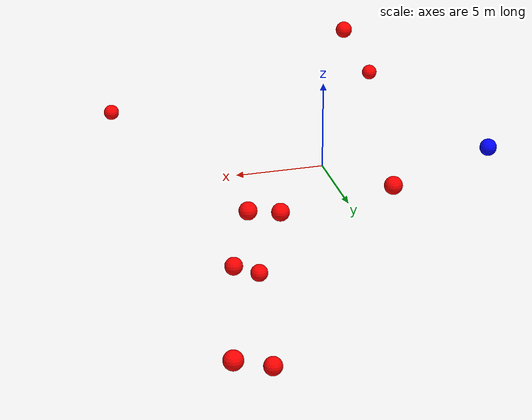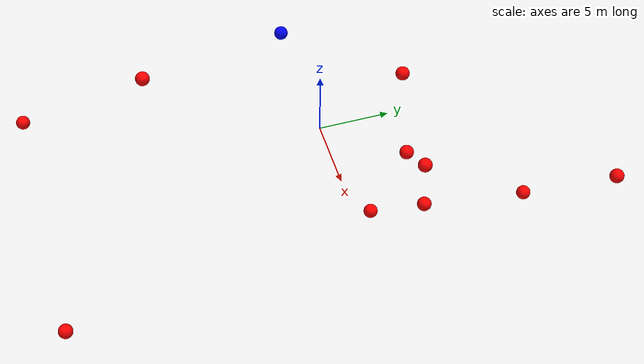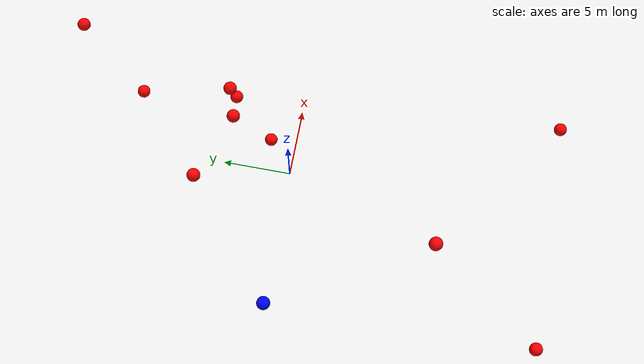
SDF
<?xml version="1.0" ?>
<sdf version="1.8">
    <world name="3d_world">
        <physics name="1ms" type="ode">
            <max_step_size>0.001</max_step_size>
            <real_time_factor>1.0</real_time_factor>
            <real_time_update_rate>1000.0</real_time_update_rate>
        </physics>
        <gravity>0 0 0</gravity>

        <plugin
            filename="gz-sim-physics-system"
            name="gz::sim::v8::systems::Physics">
        </plugin>
        <plugin
            filename="libignition-gazebo-user-commands-system.so"
            name="ignition::gazebo::systems::UserCommands">
        </plugin>
        <plugin
            filename="gz-sim-scene-broadcaster-system"
            name="gz::sim::systems::SceneBroadcaster">
        </plugin>
        <plugin
            filename="gz-sim-sensors-system"
            name="gz::sim::systems::Sensors">
            <render_engine>ogre2</render_engine>
        </plugin>

        <light type="directional" name="sun">
            <cast_shadows>true</cast_shadows>
            <pose>0 0 10 0 0 0</pose>
            <diffuse>0.8 0.8 0.8 1</diffuse>
            <specular>0.2 0.2 0.2 1</specular>
            <attenuation>
                <range>1000</range>
                <constant>0.9</constant>
                <linear>0.01</linear>
                <quadratic>0.001</quadratic>
            </attenuation>
            <direction>-0.5 0.1 -0.9</direction>
        </light>

        <!-- AGENTE -->
        <model name='agente' canonical_link='chassis'>
            <pose relative_to='world'>-10.0 0 0.0 0 0 0</pose>
            <link name='chassis'>
                <pose relative_to='__model__'>0.0 0 0.0 0 0 0</pose>
                <inertial>
                    <mass>1.14395</mass>
                    <inertia>
                        <ixx>0.095329</ixx>
                        <ixy>0</ixy>
                        <ixz>0</ixz>
                        <iyy>0.381317</iyy>
                        <iyz>0</iyz>
                        <izz>0.476646</izz>
                    </inertia>
                </inertial>
                <visual name='visual'>
                    <geometry>
                        <sphere>
                            <radius>0.5</radius>
                        </sphere>
                    </geometry>
                    <material>
                        <ambient>0.0 0.0 1.0 1</ambient>
                        <diffuse>0.0 0.0 1.0 1</diffuse>
                        <specular>0.0 0.0 1.0 1</specular>
                    </material>
                </visual>
                <collision name='collision'>
                    <geometry>
                        <sphere>
                            <radius>0.5</radius>
                        </sphere>
                    </geometry>
                </collision>
                <enable_gravity>false</enable_gravity>
            </link>

            <link name='lidar_link'>
                <pose relative_to='chassis'>0.0 0 0.1 0 0 0</pose>
                <inertial>
                    <mass>0.1</mass>
                    <inertia>
                        <ixx>0.000166667</ixx>
                        <iyy>0.000166667</iyy>
                        <izz>0.000166667</izz>
                    </inertia>
                </inertial>
                <collision name='collision'>
                    <geometry>
                        <cylinder>
                            <radius>0.05</radius>
                            <length>0.1</length>
                        </cylinder>
                    </geometry>
                </collision>
                <visual name='visual'>
                    <geometry>
                        <cylinder>
                            <radius>0.05</radius>
                            <length>0.1</length>
                        </cylinder>
                    </geometry>
                    <material>
                        <ambient>0.0 1.0 0.0 1</ambient>
                        <diffuse>0.0 1.0 0.0 1</diffuse>
                        <specular>0.0 1.0 0.0 1</specular>
                    </material>
                </visual>
                <sensor name="lidar" type="gpu_lidar">
                    <topic>scan</topic>
                    <update_rate>10</update_rate>
                    <lidar>
                        <scan>
                            <horizontal>
                                <samples>5000</samples>
                                <resolution>1</resolution>
                                <min_angle>-3.14159</min_angle>
                                <max_angle>3.14159</max_angle>
                            </horizontal>
                        </scan>
                        <range>
                            <min>0.1</min>
                            <max>10.0</max>
                            <resolution>0.01</resolution>
                        </range>
                    </lidar>
                    <visualize>true</visualize>
                    <always_on>true</always_on>
                    <update_rate>10</update_rate>
                    <pose_frame>lidar</pose_frame>
                </sensor>
                <enable_gravity>false</enable_gravity>
            </link>

            <joint name="lidar_joint" type="fixed">
                <parent>chassis</parent>
                <child>lidar_link</child>
            </joint>

            <plugin
                filename="ignition-gazebo-joint-state-publisher-system"
                name="ignition::gazebo::systems::JointStatePublisher">
            </plugin>
            <plugin
                filename="ignition-gazebo-odometry-publisher-system"
                name="ignition::gazebo::systems::OdometryPublisher">
                <dimensions>3</dimensions>
            </plugin>
            <plugin
                filename="ignition-gazebo-velocity-control-system"
                name="ignition::gazebo::systems::VelocityControl">
                <initial_linear>0.0 0 0</initial_linear>
                <initial_angular>0 0 0.0</initial_angular>
            </plugin>
            <plugin
                filename="libignition-gazebo-pose-publisher-system.so"
                name="ignition::gazebo::systems::PosePublisher">
                <topic>/agente/pose</topic>
                <frame_id>agente</frame_id>
                <update_rate>30</update_rate>
            </plugin>
        </model>

        <!-- OBSTACLE 1 -->
        <model name='obstacle_1' canonical_link='obstacle'>
            <static>false</static>
            <pose relative_to='world'>3.80 5.11 0.00 0 0 0</pose>
            <link name='obstacle'>
                <pose relative_to='__model__'>0.0 0 0.0 0 0 0</pose>
                <visual name='visual'>
                    <geometry>
                        <sphere>
                            <radius>0.50</radius>
                        </sphere>
                    </geometry>
                    <material>
                        <ambient>1.0 0.0 0.0 1</ambient>
                        <diffuse>1.0 0.0 0.0 1</diffuse>
                        <specular>1.0 0.0 0.0 1</specular>
                    </material>
                </visual>
                <collision name='collision'>
                    <geometry>
                        <sphere>
                            <radius>0.50</radius>
                        </sphere>
                    </geometry>
                </collision>
                <enable_gravity>false</enable_gravity>
            </link>

            <plugin
                filename="ignition-gazebo-velocity-control-system"
                name="ignition::gazebo::systems::VelocityControl">
                <initial_linear>-0.90 -1.26 -0.00</initial_linear>
                <initial_angular>0 0 0</initial_angular>
            </plugin>

            <plugin
                filename="ignition-gazebo-odometry-publisher-system"
                name="ignition::gazebo::systems::OdometryPublisher">
                <dimensions>3</dimensions>
            </plugin>
        </model>

        <!-- OBSTACLE 2 -->
        <model name='obstacle_2' canonical_link='obstacle'>
            <static>false</static>
            <pose relative_to='world'>9.52 18.34 -0.50 0 0 0</pose>
            <link name='obstacle'>
                <pose relative_to='__model__'>0.0 0 0.0 0 0 0</pose>
                <visual name='visual'>
                    <geometry>
                        <sphere>
                            <radius>0.50</radius>
                        </sphere>
                    </geometry>
                    <material>
                        <ambient>1.0 0.0 0.0 1</ambient>
                        <diffuse>1.0 0.0 0.0 1</diffuse>
                        <specular>1.0 0.0 0.0 1</specular>
                    </material>
                </visual>
                <collision name='collision'>
                    <geometry>
                        <sphere>
                            <radius>0.50</radius>
                        </sphere>
                    </geometry>
                </collision>
                <enable_gravity>false</enable_gravity>
            </link>

            <plugin
                filename="ignition-gazebo-velocity-control-system"
                name="ignition::gazebo::systems::VelocityControl">
                <initial_linear>-1.22 -1.58 0.04</initial_linear>
                <initial_angular>0 0 0</initial_angular>
            </plugin>

            <plugin
                filename="ignition-gazebo-odometry-publisher-system"
                name="ignition::gazebo::systems::OdometryPublisher">
                <dimensions>3</dimensions>
            </plugin>
        </model>

        <!-- OBSTACLE 3 -->
        <model name='obstacle_3' canonical_link='obstacle'>
            <static>false</static>
            <pose relative_to='world'>5.73 5.72 0.61 0 0 0</pose>
            <link name='obstacle'>
                <pose relative_to='__model__'>0.0 0 0.0 0 0 0</pose>
                <visual name='visual'>
                    <geometry>
                        <sphere>
                            <radius>0.50</radius>
                        </sphere>
                    </geometry>
                    <material>
                        <ambient>1.0 0.0 0.0 1</ambient>
                        <diffuse>1.0 0.0 0.0 1</diffuse>
                        <specular>1.0 0.0 0.0 1</specular>
                    </material>
                </visual>
                <collision name='collision'>
                    <geometry>
                        <sphere>
                            <radius>0.50</radius>
                        </sphere>
                    </geometry>
                </collision>
                <enable_gravity>false</enable_gravity>
            </link>

            <plugin
                filename="ignition-gazebo-velocity-control-system"
                name="ignition::gazebo::systems::VelocityControl">
                <initial_linear>-1.17 -1.33 -0.14</initial_linear>
                <initial_angular>0 0 0</initial_angular>
            </plugin>

            <plugin
                filename="ignition-gazebo-odometry-publisher-system"
                name="ignition::gazebo::systems::OdometryPublisher">
                <dimensions>3</dimensions>
            </plugin>
        </model>

        <!-- OBSTACLE 4 -->
        <model name='obstacle_4' canonical_link='obstacle'>
            <static>false</static>
            <pose relative_to='world'>6.35 13.32 -4.29 0 0 0</pose>
            <link name='obstacle'>
                <pose relative_to='__model__'>0.0 0 0.0 0 0 0</pose>
                <visual name='visual'>
                    <geometry>
                        <sphere>
                            <radius>0.50</radius>
                        </sphere>
                    </geometry>
                    <material>
                        <ambient>1.0 0.0 0.0 1</ambient>
                        <diffuse>1.0 0.0 0.0 1</diffuse>
                        <specular>1.0 0.0 0.0 1</specular>
                    </material>
                </visual>
                <collision name='collision'>
                    <geometry>
                        <sphere>
                            <radius>0.50</radius>
                        </sphere>
                    </geometry>
                </collision>
                <enable_gravity>false</enable_gravity>
            </link>

            <plugin
                filename="ignition-gazebo-velocity-control-system"
                name="ignition::gazebo::systems::VelocityControl">
                <initial_linear>-0.81 -1.74 0.56</initial_linear>
                <initial_angular>0 0 0</initial_angular>
            </plugin>

            <plugin
                filename="ignition-gazebo-odometry-publisher-system"
                name="ignition::gazebo::systems::OdometryPublisher">
                <dimensions>3</dimensions>
            </plugin>
        </model>

        <!-- OBSTACLE 5 -->
        <model name='obstacle_5' canonical_link='obstacle'>
            <static>false</static>
            <pose relative_to='world'>-9.15 -19.95 -2.82 0 0 0</pose>
            <link name='obstacle'>
                <pose relative_to='__model__'>0.0 0 0.0 0 0 0</pose>
                <visual name='visual'>
                    <geometry>
                        <sphere>
                            <radius>0.50</radius>
                        </sphere>
                    </geometry>
                    <material>
                        <ambient>1.0 0.0 0.0 1</ambient>
                        <diffuse>1.0 0.0 0.0 1</diffuse>
                        <specular>1.0 0.0 0.0 1</specular>
                    </material>
                </visual>
                <collision name='collision'>
                    <geometry>
                        <sphere>
                            <radius>0.50</radius>
                        </sphere>
                    </geometry>
                </collision>
                <enable_gravity>false</enable_gravity>
            </link>

            <plugin
                filename="ignition-gazebo-velocity-control-system"
                name="ignition::gazebo::systems::VelocityControl">
                <initial_linear>1.04 1.69 0.24</initial_linear>
                <initial_angular>0 0 0</initial_angular>
            </plugin>

            <plugin
                filename="ignition-gazebo-odometry-publisher-system"
                name="ignition::gazebo::systems::OdometryPublisher">
                <dimensions>3</dimensions>
            </plugin>
        </model>

        <!-- OBSTACLE 6 -->
        <model name='obstacle_6' canonical_link='obstacle'>
            <static>false</static>
            <pose relative_to='world'>8.89 -19.95 -3.88 0 0 0</pose>
            <link name='obstacle'>
                <pose relative_to='__model__'>0.0 0 0.0 0 0 0</pose>
                <visual name='visual'>
                    <geometry>
                        <sphere>
                            <radius>0.50</radius>
                        </sphere>
                    </geometry>
                    <material>
                        <ambient>1.0 0.0 0.0 1</ambient>
                        <diffuse>1.0 0.0 0.0 1</diffuse>
                        <specular>1.0 0.0 0.0 1</specular>
                    </material>
                </visual>
                <collision name='collision'>
                    <geometry>
                        <sphere>
                            <radius>0.50</radius>
                        </sphere>
                    </geometry>
                </collision>
                <enable_gravity>false</enable_gravity>
            </link>

            <plugin
                filename="ignition-gazebo-velocity-control-system"
                name="ignition::gazebo::systems::VelocityControl">
                <initial_linear>-0.70 1.84 0.36</initial_linear>
                <initial_angular>0 0 0</initial_angular>
            </plugin>

            <plugin
                filename="ignition-gazebo-odometry-publisher-system"
                name="ignition::gazebo::systems::OdometryPublisher">
                <dimensions>3</dimensions>
            </plugin>
        </model>

        <!-- OBSTACLE 7 -->
        <model name='obstacle_7' canonical_link='obstacle'>
            <static>false</static>
            <pose relative_to='world'>-4.60 -11.28 3.76 0 0 0</pose>
            <link name='obstacle'>
                <pose relative_to='__model__'>0.0 0 0.0 0 0 0</pose>
                <visual name='visual'>
                    <geometry>
                        <sphere>
                            <radius>0.50</radius>
                        </sphere>
                    </geometry>
                    <material>
                        <ambient>1.0 0.0 0.0 1</ambient>
                        <diffuse>1.0 0.0 0.0 1</diffuse>
                        <specular>1.0 0.0 0.0 1</specular>
                    </material>
                </visual>
                <collision name='collision'>
                    <geometry>
                        <sphere>
                            <radius>0.50</radius>
                        </sphere>
                    </geometry>
                </collision>
                <enable_gravity>false</enable_gravity>
            </link>

            <plugin
                filename="ignition-gazebo-velocity-control-system"
                name="ignition::gazebo::systems::VelocityControl">
                <initial_linear>1.42 1.34 -0.45</initial_linear>
                <initial_angular>0 0 0</initial_angular>
            </plugin>

            <plugin
                filename="ignition-gazebo-odometry-publisher-system"
                name="ignition::gazebo::systems::OdometryPublisher">
                <dimensions>3</dimensions>
            </plugin>
        </model>

        <!-- OBSTACLE 8 -->
        <model name='obstacle_8' canonical_link='obstacle'>
            <static>false</static>
            <pose relative_to='world'>-1.95 6.73 1.62 0 0 0</pose>
            <link name='obstacle'>
                <pose relative_to='__model__'>0.0 0 0.0 0 0 0</pose>
                <visual name='visual'>
                    <geometry>
                        <sphere>
                            <radius>0.50</radius>
                        </sphere>
                    </geometry>
                    <material>
                        <ambient>1.0 0.0 0.0 1</ambient>
                        <diffuse>1.0 0.0 0.0 1</diffuse>
                        <specular>1.0 0.0 0.0 1</specular>
                    </material>
                </visual>
                <collision name='collision'>
                    <geometry>
                        <sphere>
                            <radius>0.50</radius>
                        </sphere>
                    </geometry>
                </collision>
                <enable_gravity>false</enable_gravity>
            </link>

            <plugin
                filename="ignition-gazebo-velocity-control-system"
                name="ignition::gazebo::systems::VelocityControl">
                <initial_linear>0.90 -1.34 -0.32</initial_linear>
                <initial_angular>0 0 0</initial_angular>
            </plugin>

            <plugin
                filename="ignition-gazebo-odometry-publisher-system"
                name="ignition::gazebo::systems::OdometryPublisher">
                <dimensions>3</dimensions>
            </plugin>
        </model>

        <!-- OBSTACLE 9 -->
        <model name='obstacle_9' canonical_link='obstacle'>
            <static>false</static>
            <pose relative_to='world'>6.52 5.61 -2.63 0 0 0</pose>
            <link name='obstacle'>
                <pose relative_to='__model__'>0.0 0 0.0 0 0 0</pose>
                <visual name='visual'>
                    <geometry>
                        <sphere>
                            <radius>0.50</radius>
                        </sphere>
                    </geometry>
                    <material>
                        <ambient>1.0 0.0 0.0 1</ambient>
                        <diffuse>1.0 0.0 0.0 1</diffuse>
                        <specular>1.0 0.0 0.0 1</specular>
                    </material>
                </visual>
                <collision name='collision'>
                    <geometry>
                        <sphere>
                            <radius>0.50</radius>
                        </sphere>
                    </geometry>
                </collision>
                <enable_gravity>false</enable_gravity>
            </link>

            <plugin
                filename="ignition-gazebo-velocity-control-system"
                name="ignition::gazebo::systems::VelocityControl">
                <initial_linear>-1.60 -1.09 0.51</initial_linear>
                <initial_angular>0 0 0</initial_angular>
            </plugin>

            <plugin
                filename="ignition-gazebo-odometry-publisher-system"
                name="ignition::gazebo::systems::OdometryPublisher">
                <dimensions>3</dimensions>
            </plugin>
        </model>

        <!-- OBSTACLE 10 -->
        <model name='obstacle_10' canonical_link='obstacle'>
            <static>false</static>
            <pose relative_to='world'>4.35 2.51 -4.96 0 0 0</pose>
            <link name='obstacle'>
                <pose relative_to='__model__'>0.0 0 0.0 0 0 0</pose>
                <visual name='visual'>
                    <geometry>
                        <sphere>
                            <radius>0.50</radius>
                        </sphere>
                    </geometry>
                    <material>
                        <ambient>1.0 0.0 0.0 1</ambient>
                        <diffuse>1.0 0.0 0.0 1</diffuse>
                        <specular>1.0 0.0 0.0 1</specular>
                    </material>
                </visual>
                <collision name='collision'>
                    <geometry>
                        <sphere>
                            <radius>0.50</radius>
                        </sphere>
                    </geometry>
                </collision>
                <enable_gravity>false</enable_gravity>
            </link>

            <plugin
                filename="ignition-gazebo-velocity-control-system"
                name="ignition::gazebo::systems::VelocityControl">
                <initial_linear>-1.40 -0.64 1.27</initial_linear>
                <initial_angular>0 0 0</initial_angular>
            </plugin>

            <plugin
                filename="ignition-gazebo-odometry-publisher-system"
                name="ignition::gazebo::systems::OdometryPublisher">
                <dimensions>3</dimensions>
            </plugin>
        </model>

    </world>
</sdf>
